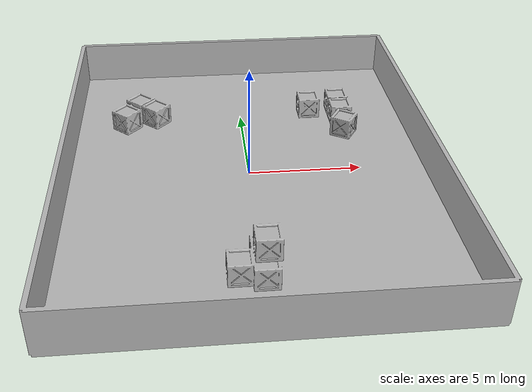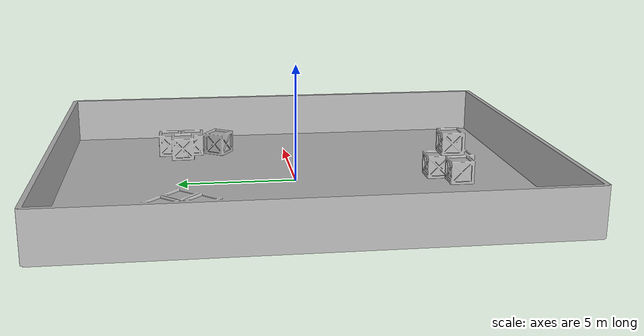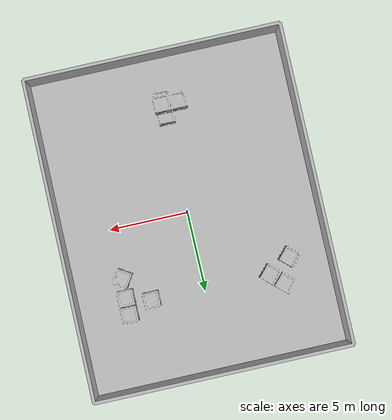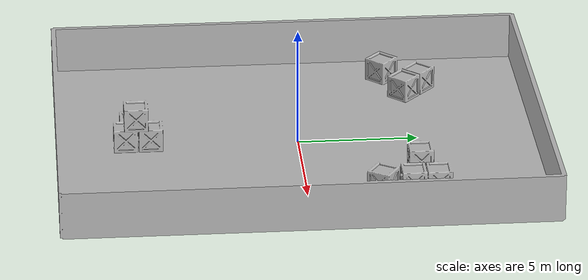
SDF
<sdf version="1.7">
 <world name="default">
  <light name="sun" type="directional">
   <pose>0 0 10 0 -0 0</pose>
   <diffuse>0.8 0.8 0.8 1</diffuse>
   <specular>0.2 0.2 0.2 1</specular>
   <attenuation>
    <range>1000</range>
    <constant>0.9</constant>
    <linear>0.01</linear>
    <quadratic>0.001</quadratic>
   </attenuation>
   <direction>-0.5 0.1 -0.9</direction>
   <spot><inner_angle>0</inner_angle><outer_angle>0</outer_angle><falloff>0</falloff></spot>
  </light>
  <gravity>0 0 -9.8</gravity>
  <magnetic_field>6e-06 2.3e-05 -4.2e-05</magnetic_field>
  <atmosphere type="adiabatic"/>
  <physics type="ode">
   <max_step_size>0.001</max_step_size>
   <real_time_factor>1</real_time_factor>
   <real_time_update_rate>1000</real_time_update_rate>
  </physics>
  <scene><ambient>0.4 0.4 0.4 1</ambient><background>0.7 0.7 0.7 1</background><shadows>1</shadows></scene>
  <audio><device>default</device></audio>
  <spherical_coordinates>
   <surface_model>EARTH_WGS84</surface_model>
   <latitude_deg>0</latitude_deg>
   <longitude_deg>0</longitude_deg>
   <elevation>0</elevation>
   <heading_deg>0</heading_deg>
  </spherical_coordinates>
  <model name="warehouse">
   <static>1</static>
   <link name="link">
    <collision name="collision">
     <geometry><mesh><scale>1 1 1</scale><uri>model://warehouse/meshes/warehouse.obj</uri></mesh></geometry>
    </collision>
    <visual name="visual">
     <geometry><mesh><scale>1 1 1</scale><uri>model://warehouse/meshes/warehouse.obj</uri></mesh></geometry>
    </visual>
   </link>
  </model>
 </world>
</sdf>
